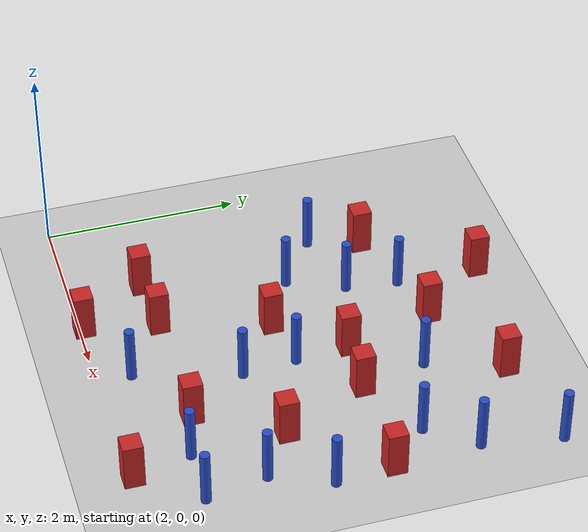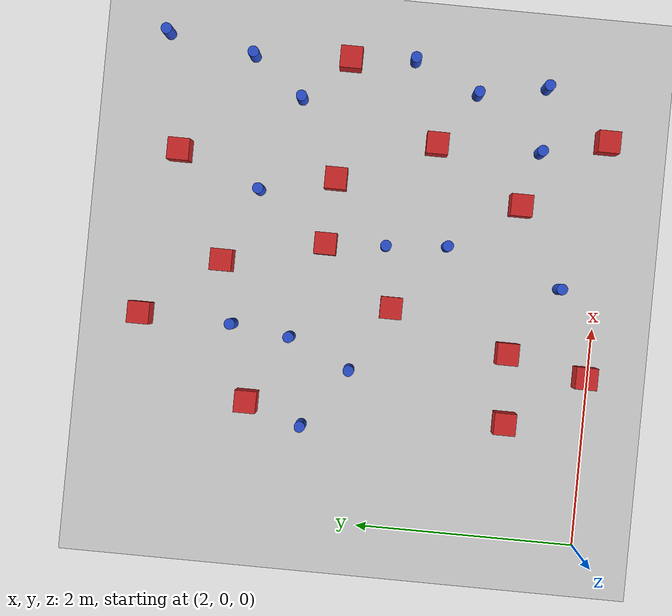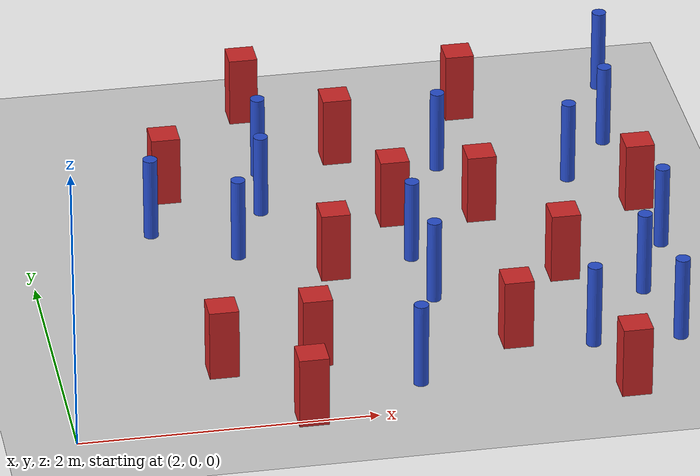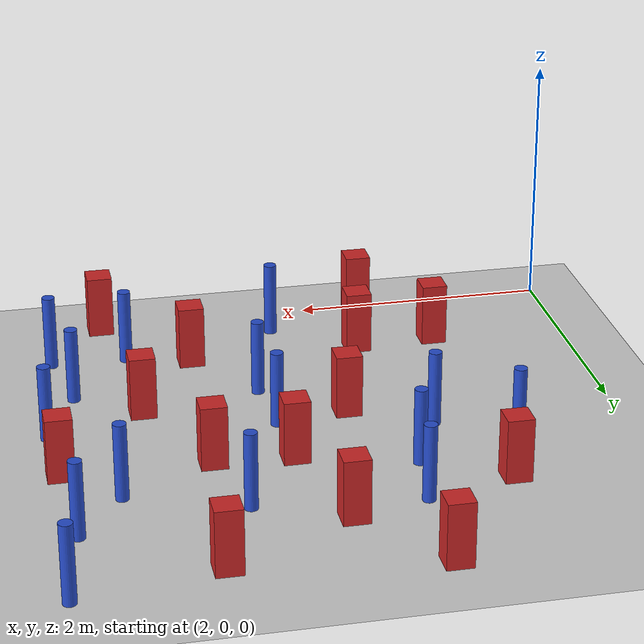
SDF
<sdf version="1.6">
 <world name="default">
  <model name="ground_plane">
   <static>1</static>
   <link name="link">
    <collision name="collision">
     <geometry><plane><normal>0 0 1</normal><size>100 100</size></plane></geometry>
     <surface><friction><ode><mu>100</mu><mu2>50</mu2></ode></friction></surface>
    </collision>
    <visual name="visual">
     <cast_shadows>0</cast_shadows>
     <geometry><plane><normal>0 0 1</normal><size>100 100</size></plane></geometry>
     <material>
      <ambient>1.0 1.0 1.0 1.0</ambient>
      <diffuse>0.8 0.8 0.8 1.0</diffuse>
      <specular>0.01 0.01 0.01 1.000000</specular>
     </material>
    </visual>
   </link>
  </model>
  <model name="pole_obstacle7">
   <static>true</static>
   <pose>3.74739690199 3.30398144632 7.38925637345e-09 -8.47170692798e-08 1.24976764939e-08 -1.74513093025e-07</pose>
   <link name="link">
    <pose>0 0 0.3 0 -0 0</pose>
    <inertial>
     <mass>1</mass>
     <inertia><ixx>0.145833</ixx><ixy>0</ixy><ixz>0</ixz><iyy>0.145833</iyy><iyz>0</iyz><izz>0.125</izz></inertia>
    </inertial>
    <collision name="collision">
     <geometry><cylinder><radius>0.05</radius><length>.6</length></cylinder></geometry>
    </collision>
    <visual name="visual">
     <geometry><cylinder><radius>0.05</radius><length>.6</length></cylinder></geometry>
     <material>
      <script><name>Gazebo/Blue</name><uri>file://media/materials/scripts/gazebo.material</uri></script>
     </material>
    </visual>
   </link>
  </model>
  <model name="pole_obstacle17">
   <static>true</static>
   <pose>6.20936333357 3.32457884415 7.38925637345e-09 -8.47170692798e-08 1.24976764937e-08 -1.74513093023e-07</pose>
   <link name="link">
    <pose>0 0 0.3 0 -0 0</pose>
    <inertial>
     <mass>1</mass>
     <inertia><ixx>0.145833</ixx><ixy>0</ixy><ixz>0</ixz><iyy>0.145833</iyy><iyz>0</iyz><izz>0.125</izz></inertia>
    </inertial>
    <collision name="collision">
     <geometry><cylinder><radius>0.05</radius><length>.6</length></cylinder></geometry>
    </collision>
    <visual name="visual">
     <geometry><cylinder><radius>0.05</radius><length>.6</length></cylinder></geometry>
     <material>
      <script><name>Gazebo/Blue</name><uri>file://media/materials/scripts/gazebo.material</uri></script>
     </material>
    </visual>
   </link>
  </model>
  <model name="square_post_obstacle28">
   <static>true</static>
   <pose>5.1523337224 2.47797331997 1.91545236811e-07 -7.35059704564e-06 1.12565212e-07 2.39332434364e-05</pose>
   <link name="link">
    <pose>0 0 0.25 0 -0 0</pose>
    <inertial>
     <mass>100</mass>
     <inertia>
      <ixx>0.166667</ixx>
      <ixy>0</ixy>
      <ixz>0</ixz>
      <iyy>0.166667</iyy>
      <iyz>0</iyz>
      <izz>0.166667</izz>
     </inertia>
    </inertial>
    <collision name="collision"><geometry><box><size>.2 .2 .5</size></box></geometry></collision>
    <visual name="visual">
     <geometry><box><size>.2 .2 .5</size></box></geometry>
     <material>
      <script><name>Gazebo/Red</name><uri>file://media/materials/scripts/gazebo.material</uri></script>
     </material>
    </visual>
   </link>
  </model>
  <model name="pole_obstacle33">
   <static>true</static>
   <pose>6.04524268277 1.26037000073 7.38925637345e-09 -8.471706928e-08 1.24976765134e-08 -1.74513093015e-07</pose>
   <link name="link">
    <pose>0 0 0.3 0 -0 0</pose>
    <inertial>
     <mass>1</mass>
     <inertia><ixx>0.145833</ixx><ixy>0</ixy><ixz>0</ixz><iyy>0.145833</iyy><iyz>0</iyz><izz>0.125</izz></inertia>
    </inertial>
    <collision name="collision">
     <geometry><cylinder><radius>0.05</radius><length>.6</length></cylinder></geometry>
    </collision>
    <visual name="visual">
     <geometry><cylinder><radius>0.05</radius><length>.6</length></cylinder></geometry>
     <material>
      <script><name>Gazebo/Blue</name><uri>file://media/materials/scripts/gazebo.material</uri></script>
     </material>
    </visual>
   </link>
  </model>
  <model name="pole_obstacle35">
   <static>true</static>
   <pose>6.29903527453 1.85566580085 7.38925637345e-09 -8.471706928e-08 1.24976765134e-08 -1.74513093015e-07</pose>
   <link name="link">
    <pose>0 0 0.3 0 -0 0</pose>
    <inertial>
     <mass>1</mass>
     <inertia><ixx>0.145833</ixx><ixy>0</ixy><ixz>0</ixz><iyy>0.145833</iyy><iyz>0</iyz><izz>0.125</izz></inertia>
    </inertial>
    <collision name="collision">
     <geometry><cylinder><radius>0.05</radius><length>.6</length></cylinder></geometry>
    </collision>
    <visual name="visual">
     <geometry><cylinder><radius>0.05</radius><length>.6</length></cylinder></geometry>
     <material>
      <script><name>Gazebo/Blue</name><uri>file://media/materials/scripts/gazebo.material</uri></script>
     </material>
    </visual>
   </link>
  </model>
  <model name="pole_obstacle50">
   <static>true</static>
   <pose>4.63285295188 1.41048805466 7.38925637345e-09 -8.471706928e-08 1.24976765134e-08 -1.74513093015e-07</pose>
   <link name="link">
    <pose>0 0 0.3 0 -0 0</pose>
    <inertial>
     <mass>1</mass>
     <inertia><ixx>0.145833</ixx><ixy>0</ixy><ixz>0</ixz><iyy>0.145833</iyy><iyz>0</iyz><izz>0.125</izz></inertia>
    </inertial>
    <collision name="collision">
     <geometry><cylinder><radius>0.05</radius><length>.6</length></cylinder></geometry>
    </collision>
    <visual name="visual">
     <geometry><cylinder><radius>0.05</radius><length>.6</length></cylinder></geometry>
     <material>
      <script><name>Gazebo/Blue</name><uri>file://media/materials/scripts/gazebo.material</uri></script>
     </material>
    </visual>
   </link>
  </model>
  <model name="square_post_obstacle53">
   <static>true</static>
   <pose>3.05797361296 3.10499686478 1.91545236811e-07 -7.35059704564e-06 1.12565212e-07 2.39332434364e-05</pose>
   <link name="link">
    <pose>0 0 0.25 0 -0 0</pose>
    <inertial>
     <mass>100</mass>
     <inertia>
      <ixx>0.166667</ixx>
      <ixy>0</ixy>
      <ixz>0</ixz>
      <iyy>0.166667</iyy>
      <iyz>0</iyz>
      <izz>0.166667</izz>
     </inertia>
    </inertial>
    <collision name="collision"><geometry><box><size>.2 .2 .5</size></box></geometry></collision>
    <visual name="visual">
     <geometry><box><size>.2 .2 .5</size></box></geometry>
     <material>
      <script><name>Gazebo/Red</name><uri>file://media/materials/scripts/gazebo.material</uri></script>
     </material>
    </visual>
   </link>
  </model>
  <model name="pole_obstacle57">
   <static>true</static>
   <pose>3.67862025897 2.76741316051 7.38925637345e-09 -8.47170692798e-08 1.24976764939e-08 -1.74513093025e-07</pose>
   <link name="link">
    <pose>0 0 0.3 0 -0 0</pose>
    <inertial>
     <mass>1</mass>
     <inertia><ixx>0.145833</ixx><ixy>0</ixy><ixz>0</ixz><iyy>0.145833</iyy><iyz>0</iyz><izz>0.125</izz></inertia>
    </inertial>
    <collision name="collision">
     <geometry><cylinder><radius>0.05</radius><length>.6</length></cylinder></geometry>
    </collision>
    <visual name="visual">
     <geometry><cylinder><radius>0.05</radius><length>.6</length></cylinder></geometry>
     <material>
      <script><name>Gazebo/Blue</name><uri>file://media/materials/scripts/gazebo.material</uri></script>
     </material>
    </visual>
   </link>
  </model>
  <model name="square_post_obstacle66">
   <static>true</static>
   <pose>4.55335231712 2.51744634531 1.91545236811e-07 -7.35059704564e-06 1.12565212e-07 2.39332434364e-05</pose>
   <link name="link">
    <pose>0 0 0.25 0 -0 0</pose>
    <inertial>
     <mass>100</mass>
     <inertia>
      <ixx>0.166667</ixx>
      <ixy>0</ixy>
      <ixz>0</ixz>
      <iyy>0.166667</iyy>
      <iyz>0</iyz>
      <izz>0.166667</izz>
     </inertia>
    </inertial>
    <collision name="collision"><geometry><box><size>.2 .2 .5</size></box></geometry></collision>
    <visual name="visual">
     <geometry><box><size>.2 .2 .5</size></box></geometry>
     <material>
      <script><name>Gazebo/Red</name><uri>file://media/materials/scripts/gazebo.material</uri></script>
     </material>
    </visual>
   </link>
  </model>
  <model name="square_post_obstacle67">
   <static>true</static>
   <pose>3.07815158013 0.742495107593 1.91545236811e-07 -7.35059704564e-06 1.12565212e-07 2.39332434364e-05</pose>
   <link name="link">
    <pose>0 0 0.25 0 -0 0</pose>
    <inertial>
     <mass>100</mass>
     <inertia>
      <ixx>0.166667</ixx>
      <ixy>0</ixy>
      <ixz>0</ixz>
      <iyy>0.166667</iyy>
      <iyz>0</iyz>
      <izz>0.166667</izz>
     </inertia>
    </inertial>
    <collision name="collision"><geometry><box><size>.2 .2 .5</size></box></geometry></collision>
    <visual name="visual">
     <geometry><box><size>.2 .2 .5</size></box></geometry>
     <material>
      <script><name>Gazebo/Red</name><uri>file://media/materials/scripts/gazebo.material</uri></script>
     </material>
    </visual>
   </link>
  </model>
  <model name="pole_obstacle73">
   <static>true</static>
   <pose>4.99015887674 3.16644557597 7.38925637345e-09 -8.47170692798e-08 1.24976764937e-08 -1.74513093023e-07</pose>
   <link name="link">
    <pose>0 0 0.3 0 -0 0</pose>
    <inertial>
     <mass>1</mass>
     <inertia><ixx>0.145833</ixx><ixy>0</ixy><ixz>0</ixz><iyy>0.145833</iyy><iyz>0</iyz><izz>0.125</izz></inertia>
    </inertial>
    <collision name="collision">
     <geometry><cylinder><radius>0.05</radius><length>.6</length></cylinder></geometry>
    </collision>
    <visual name="visual">
     <geometry><cylinder><radius>0.05</radius><length>.6</length></cylinder></geometry>
     <material>
      <script><name>Gazebo/Blue</name><uri>file://media/materials/scripts/gazebo.material</uri></script>
     </material>
    </visual>
   </link>
  </model>
  <model name="square_post_obstacle77">
   <static>true</static>
   <pose>5.28018869237 3.92317365067 1.91545236811e-07 -7.35059704564e-06 1.12565212e-07 2.39332434364e-05</pose>
   <link name="link">
    <pose>0 0 0.25 0 -0 0</pose>
    <inertial>
     <mass>100</mass>
     <inertia>
      <ixx>0.166667</ixx>
      <ixy>0</ixy>
      <ixz>0</ixz>
      <iyy>0.166667</iyy>
      <iyz>0</iyz>
      <izz>0.166667</izz>
     </inertia>
    </inertial>
    <collision name="collision"><geometry><box><size>.2 .2 .5</size></box></geometry></collision>
    <visual name="visual">
     <geometry><box><size>.2 .2 .5</size></box></geometry>
     <material>
      <script><name>Gazebo/Red</name><uri>file://media/materials/scripts/gazebo.material</uri></script>
     </material>
    </visual>
   </link>
  </model>
  <model name="square_post_obstacle78">
   <static>true</static>
   <pose>5.55456929234 1.58961938231 1.91545236811e-07 -7.35059704564e-06 1.12565212e-07 2.39332434364e-05</pose>
   <link name="link">
    <pose>0 0 0.25 0 -0 0</pose>
    <inertial>
     <mass>100</mass>
     <inertia>
      <ixx>0.166667</ixx>
      <ixy>0</ixy>
      <ixz>0</ixz>
      <iyy>0.166667</iyy>
      <iyz>0</iyz>
      <izz>0.166667</izz>
     </inertia>
    </inertial>
    <collision name="collision"><geometry><box><size>.2 .2 .5</size></box></geometry></collision>
    <visual name="visual">
     <geometry><box><size>.2 .2 .5</size></box></geometry>
     <material>
      <script><name>Gazebo/Red</name><uri>file://media/materials/scripts/gazebo.material</uri></script>
     </material>
    </visual>
   </link>
  </model>
  <model name="pole_obstacle89">
   <static>true</static>
   <pose>4.34190754353 0.352028006719 7.38925637345e-09 -8.47170692798e-08 1.24976765003e-08 -1.7451309302e-07</pose>
   <link name="link">
    <pose>0 0 0.3 0 -0 0</pose>
    <inertial>
     <mass>1</mass>
     <inertia><ixx>0.145833</ixx><ixy>0</ixy><ixz>0</ixz><iyy>0.145833</iyy><iyz>0</iyz><izz>0.125</izz></inertia>
    </inertial>
    <collision name="collision">
     <geometry><cylinder><radius>0.05</radius><length>.6</length></cylinder></geometry>
    </collision>
    <visual name="visual">
     <geometry><cylinder><radius>0.05</radius><length>.6</length></cylinder></geometry>
     <material>
      <script><name>Gazebo/Blue</name><uri>file://media/materials/scripts/gazebo.material</uri></script>
     </material>
    </visual>
   </link>
  </model>
  <model name="pole_obstacle90">
   <static>true</static>
   <pose>5.85637389648 2.85437994238 7.38925637345e-09 -8.47170692798e-08 1.24976764937e-08 -1.74513093023e-07</pose>
   <link name="link">
    <pose>0 0 0.3 0 -0 0</pose>
    <inertial>
     <mass>1</mass>
     <inertia><ixx>0.145833</ixx><ixy>0</ixy><ixz>0</ixz><iyy>0.145833</iyy><iyz>0</iyz><izz>0.125</izz></inertia>
    </inertial>
    <collision name="collision">
     <geometry><cylinder><radius>0.05</radius><length>.6</length></cylinder></geometry>
    </collision>
    <visual name="visual">
     <geometry><cylinder><radius>0.05</radius><length>.6</length></cylinder></geometry>
     <material>
      <script><name>Gazebo/Blue</name><uri>file://media/materials/scripts/gazebo.material</uri></script>
     </material>
    </visual>
   </link>
  </model>
  <model name="square_post_obstacle83">
   <static>true</static>
   <pose>5.71236827532 0.0427110932242 1.91545236811e-07 -7.35059704564e-06 1.12565212e-07 2.39332434364e-05</pose>
   <link name="link">
    <pose>0 0 0.25 0 -0 0</pose>
    <inertial>
     <mass>100</mass>
     <inertia>
      <ixx>0.166667</ixx>
      <ixy>0</ixy>
      <ixz>0</ixz>
      <iyy>0.166667</iyy>
      <iyz>0</iyz>
      <izz>0.166667</izz>
     </inertia>
    </inertial>
    <collision name="collision"><geometry><box><size>.2 .2 .5</size></box></geometry></collision>
    <visual name="visual">
     <geometry><box><size>.2 .2 .5</size></box></geometry>
     <material>
      <script><name>Gazebo/Red</name><uri>file://media/materials/scripts/gazebo.material</uri></script>
     </material>
    </visual>
   </link>
  </model>
  <model name="square_post_obstacle98">
   <static>true</static>
   <pose>3.77141077448 4.14343351096 1.91545236811e-07 -7.35059704564e-06 1.12565212e-07 2.39332434364e-05</pose>
   <link name="link">
    <pose>0 0 0.25 0 -0 0</pose>
    <inertial>
     <mass>100</mass>
     <inertia>
      <ixx>0.166667</ixx>
      <ixy>0</ixy>
      <ixz>0</ixz>
      <iyy>0.166667</iyy>
      <iyz>0</iyz>
      <izz>0.166667</izz>
     </inertia>
    </inertial>
    <collision name="collision"><geometry><box><size>.2 .2 .5</size></box></geometry></collision>
    <visual name="visual">
     <geometry><box><size>.2 .2 .5</size></box></geometry>
     <material>
      <script><name>Gazebo/Red</name><uri>file://media/materials/scripts/gazebo.material</uri></script>
     </material>
    </visual>
   </link>
  </model>
  <model name="square_post_obstacle109">
   <static>true</static>
   <pose>3.55812603229 0.0457568674687 1.91545236811e-07 -7.35059704564e-06 1.12565212e-07 2.39332434364e-05</pose>
   <link name="link">
    <pose>0 0 0.25 0 -0 0</pose>
    <inertial>
     <mass>100</mass>
     <inertia>
      <ixx>0.166667</ixx>
      <ixy>0</ixy>
      <ixz>0</ixz>
      <iyy>0.166667</iyy>
      <iyz>0</iyz>
      <izz>0.166667</izz>
     </inertia>
    </inertial>
    <collision name="collision"><geometry><box><size>.2 .2 .5</size></box></geometry></collision>
    <visual name="visual">
     <geometry><box><size>.2 .2 .5</size></box></geometry>
     <material>
      <script><name>Gazebo/Red</name><uri>file://media/materials/scripts/gazebo.material</uri></script>
     </material>
    </visual>
   </link>
  </model>
  <model name="pole_obstacle128">
   <static>true</static>
   <pose>6.34316117 4.1224485483 7.38925637345e-09 -8.47170692796e-08 1.24976764786e-08 -1.74513093032e-07</pose>
   <link name="link">
    <pose>0 0 0.3 0 -0 0</pose>
    <inertial>
     <mass>1</mass>
     <inertia><ixx>0.145833</ixx><ixy>0</ixy><ixz>0</ixz><iyy>0.145833</iyy><iyz>0</iyz><izz>0.125</izz></inertia>
    </inertial>
    <collision name="collision">
     <geometry><cylinder><radius>0.05</radius><length>.6</length></cylinder></geometry>
    </collision>
    <visual name="visual">
     <geometry><cylinder><radius>0.05</radius><length>.6</length></cylinder></geometry>
     <material>
      <script><name>Gazebo/Blue</name><uri>file://media/materials/scripts/gazebo.material</uri></script>
     </material>
    </visual>
   </link>
  </model>
  <model name="pole_obstacle139">
   <static>true</static>
   <pose>2.88572387047 2.58926678594 7.38925637345e-09 -8.47170692798e-08 1.24976764939e-08 -1.74513093025e-07</pose>
   <link name="link">
    <pose>0 0 0.3 0 -0 0</pose>
    <inertial>
     <mass>1</mass>
     <inertia><ixx>0.145833</ixx><ixy>0</ixy><ixz>0</ixz><iyy>0.145833</iyy><iyz>0</iyz><izz>0.125</izz></inertia>
    </inertial>
    <collision name="collision">
     <geometry><cylinder><radius>0.05</radius><length>.6</length></cylinder></geometry>
    </collision>
    <visual name="visual">
     <geometry><cylinder><radius>0.05</radius><length>.6</length></cylinder></geometry>
     <material>
      <script><name>Gazebo/Blue</name><uri>file://media/materials/scripts/gazebo.material</uri></script>
     </material>
    </visual>
   </link>
  </model>
  <model name="square_post_obstacle124">
   <static>true</static>
   <pose>6.25428705781 2.44244304308 1.91545236811e-07 -7.35059704564e-06 1.12565212e-07 2.39332434364e-05</pose>
   <link name="link">
    <pose>0 0 0.25 0 -0 0</pose>
    <inertial>
     <mass>100</mass>
     <inertia>
      <ixx>0.166667</ixx>
      <ixy>0</ixy>
      <ixz>0</ixz>
      <iyy>0.166667</iyy>
      <iyz>0</iyz>
      <izz>0.166667</izz>
     </inertia>
    </inertial>
    <collision name="collision"><geometry><box><size>.2 .2 .5</size></box></geometry></collision>
    <visual name="visual">
     <geometry><box><size>.2 .2 .5</size></box></geometry>
     <material>
      <script><name>Gazebo/Red</name><uri>file://media/materials/scripts/gazebo.material</uri></script>
     </material>
    </visual>
   </link>
  </model>
  <model name="pole_obstacle143">
   <static>true</static>
   <pose>5.56904722759 0.641976653906 7.38925637345e-09 -8.47170692799e-08 1.24976765038e-08 -1.74513093018e-07</pose>
   <link name="link">
    <pose>0 0 0.3 0 -0 0</pose>
    <inertial>
     <mass>1</mass>
     <inertia><ixx>0.145833</ixx><ixy>0</ixy><ixz>0</ixz><iyy>0.145833</iyy><iyz>0</iyz><izz>0.125</izz></inertia>
    </inertial>
    <collision name="collision">
     <geometry><cylinder><radius>0.05</radius><length>.6</length></cylinder></geometry>
    </collision>
    <visual name="visual">
     <geometry><cylinder><radius>0.05</radius><length>.6</length></cylinder></geometry>
     <material>
      <script><name>Gazebo/Blue</name><uri>file://media/materials/scripts/gazebo.material</uri></script>
     </material>
    </visual>
   </link>
  </model>
  <model name="square_post_obstacle139">
   <static>true</static>
   <pose>5.06679464882 0.777560377866 1.91545236811e-07 -7.35059704564e-06 1.12565212e-07 2.39332434364e-05</pose>
   <link name="link">
    <pose>0 0 0.25 0 -0 0</pose>
    <inertial>
     <mass>100</mass>
     <inertia>
      <ixx>0.166667</ixx>
      <ixy>0</ixy>
      <ixz>0</ixz>
      <iyy>0.166667</iyy>
      <iyz>0</iyz>
      <izz>0.166667</izz>
     </inertia>
    </inertial>
    <collision name="collision"><geometry><box><size>.2 .2 .5</size></box></geometry></collision>
    <visual name="visual">
     <geometry><box><size>.2 .2 .5</size></box></geometry>
     <material>
      <script><name>Gazebo/Red</name><uri>file://media/materials/scripts/gazebo.material</uri></script>
     </material>
    </visual>
   </link>
  </model>
  <model name="square_post_obstacle142">
   <static>true</static>
   <pose>4.31687158032 3.44465338884 1.91545236811e-07 -7.35059704564e-06 1.12565212e-07 2.39332434364e-05</pose>
   <link name="link">
    <pose>0 0 0.25 0 -0 0</pose>
    <inertial>
     <mass>100</mass>
     <inertia>
      <ixx>0.166667</ixx>
      <ixy>0</ixy>
      <ixz>0</ixz>
      <iyy>0.166667</iyy>
      <iyz>0</iyz>
      <izz>0.166667</izz>
     </inertia>
    </inertial>
    <collision name="collision"><geometry><box><size>.2 .2 .5</size></box></geometry></collision>
    <visual name="visual">
     <geometry><box><size>.2 .2 .5</size></box></geometry>
     <material>
      <script><name>Gazebo/Red</name><uri>file://media/materials/scripts/gazebo.material</uri></script>
     </material>
    </visual>
   </link>
  </model>
  <model name="pole_obstacle156">
   <static>true</static>
   <pose>4.58448338189 1.96914910357 7.38925637345e-09 -8.471706928e-08 1.24976765177e-08 -1.74513093012e-07</pose>
   <link name="link">
    <pose>0 0 0.3 0 -0 0</pose>
    <inertial>
     <mass>1</mass>
     <inertia><ixx>0.145833</ixx><ixy>0</ixy><ixz>0</ixz><iyy>0.145833</iyy><iyz>0</iyz><izz>0.125</izz></inertia>
    </inertial>
    <collision name="collision">
     <geometry><cylinder><radius>0.05</radius><length>.6</length></cylinder></geometry>
    </collision>
    <visual name="visual">
     <geometry><cylinder><radius>0.05</radius><length>.6</length></cylinder></geometry>
     <material>
      <script><name>Gazebo/Blue</name><uri>file://media/materials/scripts/gazebo.material</uri></script>
     </material>
    </visual>
   </link>
  </model>
  <model name="square_post_obstacle197">
   <static>true</static>
   <pose>3.71083884828 0.775814005364 1.91545236811e-07 -7.35059704564e-06 1.12565212e-07 2.39332434364e-05</pose>
   <link name="link">
    <pose>0 0 0.25 0 -0 0</pose>
    <inertial>
     <mass>100</mass>
     <inertia>
      <ixx>0.166667</ixx>
      <ixy>0</ixy>
      <ixz>0</ixz>
      <iyy>0.166667</iyy>
      <iyz>0</iyz>
      <izz>0.166667</izz>
     </inertia>
    </inertial>
    <collision name="collision"><geometry><box><size>.2 .2 .5</size></box></geometry></collision>
    <visual name="visual">
     <geometry><box><size>.2 .2 .5</size></box></geometry>
     <material>
      <script><name>Gazebo/Red</name><uri>file://media/materials/scripts/gazebo.material</uri></script>
     </material>
    </visual>
   </link>
  </model>
  <model name="pole_obstacle191">
   <static>true</static>
   <pose>3.4281478886 2.19918133852 7.38925637345e-09 -8.47170692798e-08 1.24976764939e-08 -1.74513093025e-07</pose>
   <link name="link">
    <pose>0 0 0.3 0 -0 0</pose>
    <inertial>
     <mass>1</mass>
     <inertia><ixx>0.145833</ixx><ixy>0</ixy><ixz>0</ixz><iyy>0.145833</iyy><iyz>0</iyz><izz>0.125</izz></inertia>
    </inertial>
    <collision name="collision">
     <geometry><cylinder><radius>0.05</radius><length>.6</length></cylinder></geometry>
    </collision>
    <visual name="visual">
     <geometry><cylinder><radius>0.05</radius><length>.6</length></cylinder></geometry>
     <material>
      <script><name>Gazebo/Blue</name><uri>file://media/materials/scripts/gazebo.material</uri></script>
     </material>
    </visual>
   </link>
  </model>
  <model name="square_post_obstacle214">
   <static>true</static>
   <pose>4.02772315268 1.86914504152 1.91545236811e-07 -7.35059704564e-06 1.12565212e-07 2.39332434364e-05</pose>
   <link name="link">
    <pose>0 0 0.25 0 -0 0</pose>
    <inertial>
     <mass>100</mass>
     <inertia>
      <ixx>0.166667</ixx>
      <ixy>0</ixy>
      <ixz>0</ixz>
      <iyy>0.166667</iyy>
      <iyz>0</iyz>
      <izz>0.166667</izz>
     </inertia>
    </inertial>
    <collision name="collision"><geometry><box><size>.2 .2 .5</size></box></geometry></collision>
    <visual name="visual">
     <geometry><box><size>.2 .2 .5</size></box></geometry>
     <material>
      <script><name>Gazebo/Red</name><uri>file://media/materials/scripts/gazebo.material</uri></script>
     </material>
    </visual>
   </link>
  </model>
  <model name="pole_obstacle233">
   <static>true</static>
   <pose>6.16264000957 0.633161020781 7.38925637345e-09 -8.47170692799e-08 1.24976765005e-08 -1.7451309302e-07</pose>
   <link name="link">
    <pose>0 0 0.3 0 -0 0</pose>
    <inertial>
     <mass>1</mass>
     <inertia><ixx>0.145833</ixx><ixy>0</ixy><ixz>0</ixz><iyy>0.145833</iyy><iyz>0</iyz><izz>0.125</izz></inertia>
    </inertial>
    <collision name="collision">
     <geometry><cylinder><radius>0.05</radius><length>.6</length></cylinder></geometry>
    </collision>
    <visual name="visual">
     <geometry><cylinder><radius>0.05</radius><length>.6</length></cylinder></geometry>
     <material>
      <script><name>Gazebo/Blue</name><uri>file://media/materials/scripts/gazebo.material</uri></script>
     </material>
    </visual>
   </link>
  </model>
 </world>
</sdf>
